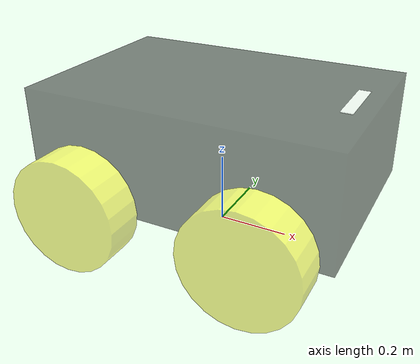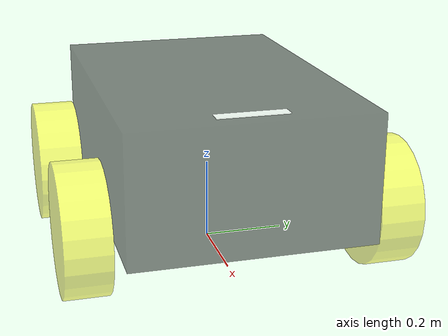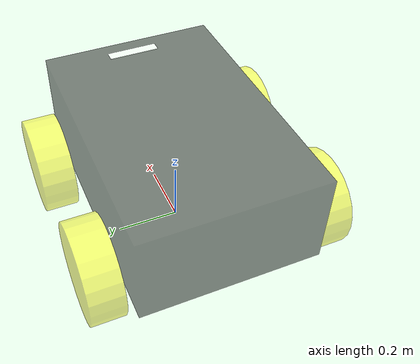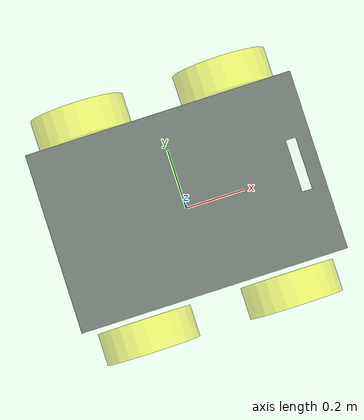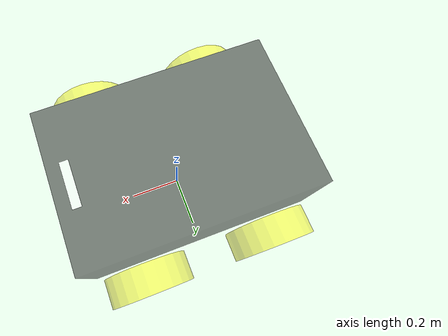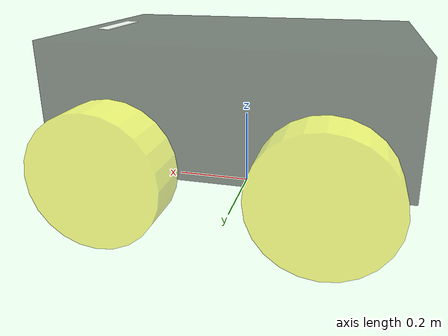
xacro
<?xml version="1.0"?>

<robot xmlns:xacro="http://www.ros.org/wiki/xacro"
 	xmlns:sensor="http://playerstage.sourceforge.net/gazebo/xmlschema/#sensor"
    	xmlns:controller="http://playerstage.sourceforge.net/gazebo/xmlschema/#controller"
    	xmlns:interface="http://playerstage.sourceforge.net/gazebo/xmlschema/#interface"
	name="robot1_xacro">

	<xacro:property name="length_wheel" value="0.05" />
	<xacro:property name="radius_wheel" value="0.05" />
	<xacro:macro name="default_inertial" params="mass">
               <inertial>
                       <mass value="${mass}" />
                       <inertia ixx="1.0" ixy="0.0" ixz="0.0"
                                iyy="1.0" iyz="0.0"
                                izz="1.0" />
               </inertial>
	</xacro:macro>

	<link name="base_footprint">
   		<visual>
			<geometry>
      				<box size="0.001 0.001 0.001"/>
     		</geometry>
			<origin rpy="0 0 0" xyz="0 0 0"/>
   		</visual>
		<xacro:default_inertial mass="0.0001"/>
 	</link>

	<gazebo reference="base_footprint">
		<material>Gazebo/Green</material>
		<turnGravityOff>false</turnGravityOff>
	</gazebo>

	<joint name="base_footprint_joint" type="fixed">
		<origin xyz="0 0 0.2775" />
		<parent link="base_footprint" />
		<child link="base_link" />
	</joint>

	<link name="base_link">
   		<visual>
			<geometry>
					<box size="0.85 0.57 0.305"/>
     		</geometry>
			<material name="black">
                <color rgba="0 0 0 .5" />
            </material>
			<origin rpy="0 0 0" xyz="0 0 0"/>
   		</visual>
 	</link>

 	<link name="wheel_1">
   		<visual>
     			<geometry>
				    <cylinder length="0.105" radius="0.155">
					</cylinder>
     			</geometry>
				<material name="yellow">
                    <color rgba="1 1 0 0.5"/>
                </material>
			<origin rpy="0 0 0" xyz="0 0 -0.0525"/>
		</visual>
 	</link>

 	<link name="wheel_2">
   		<visual>
     			<geometry>
       				<cylinder length="0.105" radius="0.155">
					</cylinder>
     			</geometry>
				<material name="yellow">
                    <color rgba="1 1 0 0.5"/>
                </material>
			<origin rpy="0 0 0" xyz="0 0 -0.0525"/>
		</visual>
 	</link>

 	<link name="wheel_3">
   		<visual>
     		<geometry>
       			<cylinder length="0.105" radius="0.155">
				</cylinder>
     		</geometry>
				<material name="yellow">
                    <color rgba="1 1 0 0.5"/>
                </material>
			<origin rpy="0 0 0" xyz="0 0 0.0525"/>
		</visual>
 	</link>

 	<link name="wheel_4">
   		<visual>
     		<geometry>
       			<cylinder length="0.105" radius="0.155">
				</cylinder>
     		</geometry>
				<material name="yellow">
                    <color rgba="1 1 0 0.5"/>
                </material>
			<origin rpy="0 0 0" xyz="0 0 0.0525"/>
		</visual>
 	</link>

<!-- comment camera_link when i use rplidar -->

 <link name="mynteye_link_frame">
    		<visual>
      			<geometry>
                               <box size="0.165 0.0315 0.0296"/>
			</geometry>
                        <material name="white">
                          <color rgba="1 1 1 .5" />
                        </material>
                        <origin rpy="0 0 1.57079632679" xyz="0 0 0"/>
    		</visual>
 </link>

 <joint name="base_to_wheel1" type="continuous">
   <parent link="base_link"/>
   <child link="wheel_1"/>
   <origin rpy="1.57075 0 0" xyz="0.24 0.305 -0.1205"/>
   <axis xyz="0 0 1" />
 </joint>

 <joint name="base_to_wheel2" type="continuous">
   <parent link="base_link"/>
   <child link="wheel_2"/>
   <origin rpy="1.57075 0 0" xyz="-0.24 0.305 -0.1205"/>
   <axis xyz="0 0 1" />
</joint>

 <joint name="base_to_wheel3" type="continuous">
   <parent link="base_link"/>
   <child link="wheel_3"/>
   <origin rpy="1.57075 0 0" xyz="0.24 -0.305 -0.1205"/>
   <axis xyz="0 0 1" />
 </joint>

 <joint name="base_to_wheel4" type="continuous">
   <parent link="base_link"/>
   <child link="wheel_4"/>
   <origin rpy="1.57075 0 0" xyz="-0.24 -0.305 -0.1205"/>
    <axis xyz="0 0 1" />
 </joint>

<!-- comment camera_link when i use rplidar -->
  <joint name="mynteye_joint" type="fixed">
    <origin rpy="0 0 0" xyz="0.36225 0.0025 0.1402"/>
    <parent link="base_link"/>
    <child link="mynteye_link_frame"/>
 </joint>

</robot>
